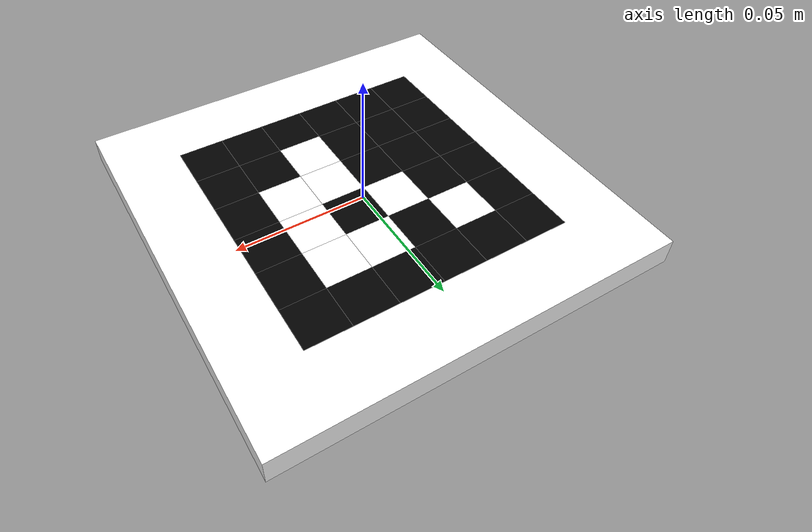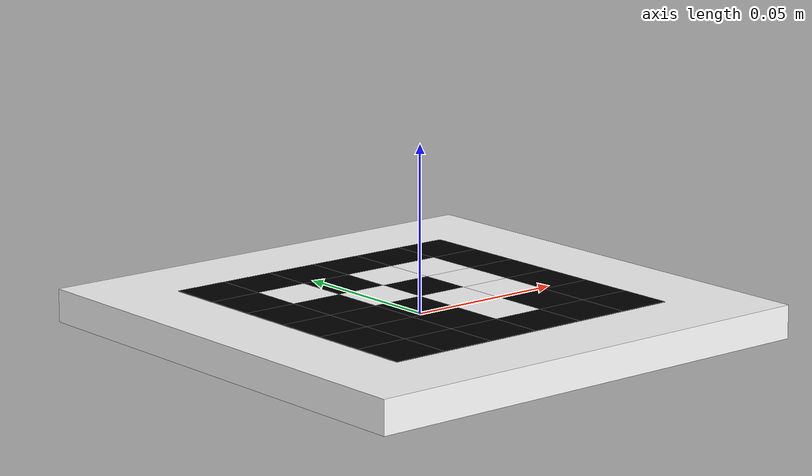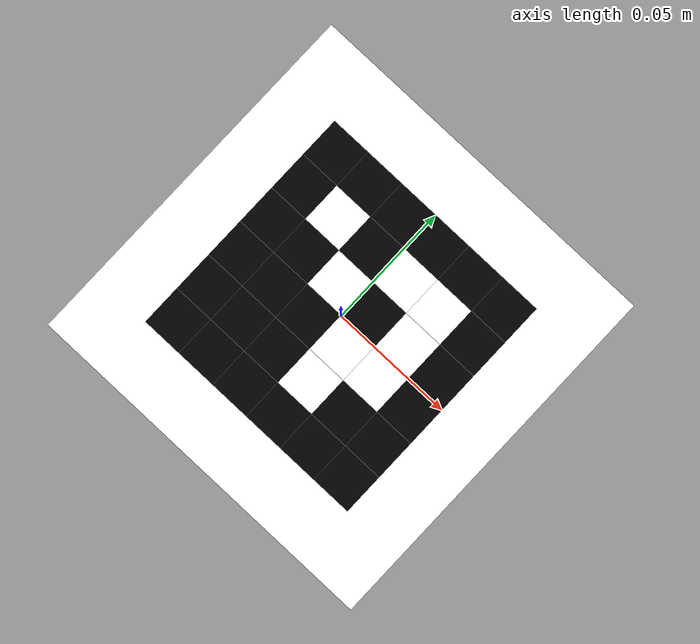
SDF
<?xml version="1.0" ?>
<sdf version="1.8">
  <model name="aruco_marker">
    <static>true</static>

    <!-- ЕДИНЫЙ ЛИНК СО ВСЕМИ ВИЗУАЛАМИ И КОЛЛИЗИЯМИ -->
    <link name="marker_body">
      <pose>0 0 0 0 0 0</pose>

      <!-- БЕЛАЯ ОСНОВА -->
      <visual name="base_visual">
        <geometry><box><size>0.15 0.15 0.01</size></box></geometry>
        <material><ambient>1 1 1 1</ambient><diffuse>1 1 1 1</diffuse></material>
      </visual>
      <collision name="base_collision">
        <geometry><box><size>0.15 0.15 0.01</size></box></geometry>
      </collision>

      <!-- СТРОКА 0: Ч Ч Ч Ч Ч Ч                       -->
      <visual name="v00"><pose>-0.04167 0.04167 0.0051 0 0 0</pose><geometry><box><size>0.01667 0.01667 0.0002</size></box></geometry><material><ambient>0 0 0 1</ambient><diffuse>0 0 0 1</diffuse></material></visual>
      <collision name="c00"><pose>-0.04167 0.04167 0.0051 0 0 0</pose><geometry><box><size>0.01667 0.01667 0.0002</size></box></geometry></collision>

      <visual name="v01"><pose>-0.02500 0.04167 0.0051 0 0 0</pose><geometry><box><size>0.01667 0.01667 0.0002</size></box></geometry><material><ambient>0 0 0 1</ambient><diffuse>0 0 0 1</diffuse></material></visual>
      <collision name="c01"><pose>-0.02500 0.04167 0.0051 0 0 0</pose><geometry><box><size>0.01667 0.01667 0.0002</size></box></geometry></collision>

      <visual name="v02"><pose>-0.00833 0.04167 0.0051 0 0 0</pose><geometry><box><size>0.01667 0.01667 0.0002</size></box></geometry><material><ambient>0 0 0 1</ambient><diffuse>0 0 0 1</diffuse></material></visual>
      <collision name="c02"><pose>-0.00833 0.04167 0.0051 0 0 0</pose><geometry><box><size>0.01667 0.01667 0.0002</size></box></geometry></collision>

      <visual name="v03"><pose>0.00833 0.04167 0.0051 0 0 0</pose><geometry><box><size>0.01667 0.01667 0.0002</size></box></geometry><material><ambient>0 0 0 1</ambient><diffuse>0 0 0 1</diffuse></material></visual>
      <collision name="c03"><pose>0.00833 0.04167 0.0051 0 0 0</pose><geometry><box><size>0.01667 0.01667 0.0002</size></box></geometry></collision>

      <visual name="v04"><pose>0.02500 0.04167 0.0051 0 0 0</pose><geometry><box><size>0.01667 0.01667 0.0002</size></box></geometry><material><ambient>0 0 0 1</ambient><diffuse>0 0 0 1</diffuse></material></visual>
      <collision name="c04"><pose>0.02500 0.04167 0.0051 0 0 0</pose><geometry><box><size>0.01667 0.01667 0.0002</size></box></geometry></collision>

      <visual name="v05"><pose>0.04167 0.04167 0.0051 0 0 0</pose><geometry><box><size>0.01667 0.01667 0.0002</size></box></geometry><material><ambient>0 0 0 1</ambient><diffuse>0 0 0 1</diffuse></material></visual>
      <collision name="c05"><pose>0.04167 0.04167 0.0051 0 0 0</pose><geometry><box><size>0.01667 0.01667 0.0002</size></box></geometry></collision>

      <!-- СТРОКА 1: Ч Б Ч Б Б Ч -->
      <visual name="v10"><pose>-0.04167 0.02500 0.0051 0 0 0</pose><geometry><box><size>0.01667 0.01667 0.0002</size></box></geometry><material><ambient>0 0 0 1</ambient><diffuse>0 0 0 1</diffuse></material></visual>
      <collision name="c10"><pose>-0.04167 0.02500 0.0051 0 0 0</pose><geometry><box><size>0.01667 0.01667 0.0002</size></box></geometry></collision>

      <visual name="v11"><pose>-0.02500 0.02500 0.0051 0 0 0</pose><geometry><box><size>0.01667 0.01667 0.0002</size></box></geometry><material><ambient>1 1 1 1</ambient><diffuse>1 1 1 1</diffuse></material></visual>
      <collision name="c11"><pose>-0.02500 0.02500 0.0051 0 0 0</pose><geometry><box><size>0.01667 0.01667 0.0002</size></box></geometry></collision>

      <visual name="v12"><pose>-0.00833 0.02500 0.0051 0 0 0</pose><geometry><box><size>0.01667 0.01667 0.0002</size></box></geometry><material><ambient>0 0 0 1</ambient><diffuse>0 0 0 1</diffuse></material></visual>
      <collision name="c12"><pose>-0.00833 0.02500 0.0051 0 0 0</pose><geometry><box><size>0.01667 0.01667 0.0002</size></box></geometry></collision>

      <visual name="v13"><pose>0.00833 0.02500 0.0051 0 0 0</pose><geometry><box><size>0.01667 0.01667 0.0002</size></box></geometry><material><ambient>1 1 1 1</ambient><diffuse>1 1 1 1</diffuse></material></visual>
      <collision name="c13"><pose>0.00833 0.02500 0.0051 0 0 0</pose><geometry><box><size>0.01667 0.01667 0.0002</size></box></geometry></collision>

      <visual name="v14"><pose>0.02500 0.02500 0.0051 0 0 0</pose><geometry><box><size>0.01667 0.01667 0.0002</size></box></geometry><material><ambient>1 1 1 1</ambient><diffuse>1 1 1 1</diffuse></material></visual>
      <collision name="c14"><pose>0.02500 0.02500 0.0051 0 0 0</pose><geometry><box><size>0.01667 0.01667 0.0002</size></box></geometry></collision>

      <visual name="v15"><pose>0.04167 0.02500 0.0051 0 0 0</pose><geometry><box><size>0.01667 0.01667 0.0002</size></box></geometry><material><ambient>0 0 0 1</ambient><diffuse>0 0 0 1</diffuse></material></visual>
      <collision name="c15"><pose>0.04167 0.02500 0.0051 0 0 0</pose><geometry><box><size>0.01667 0.01667 0.0002</size></box></geometry></collision>

      <!-- СТРОКА 2: Ч Ч Б Ч Б Ч -->
      <visual name="v20"><pose>-0.04167 0.00833 0.0051 0 0 0</pose><geometry><box><size>0.01667 0.01667 0.0002</size></box></geometry><material><ambient>0 0 0 1</ambient><diffuse>0 0 0 1</diffuse></material></visual>
      <collision name="c20"><pose>-0.04167 0.00833 0.0051 0 0 0</pose><geometry><box><size>0.01667 0.01667 0.0002</size></box></geometry></collision>

      <visual name="v21"><pose>-0.02500 0.00833 0.0051 0 0 0</pose><geometry><box><size>0.01667 0.01667 0.0002</size></box></geometry><material><ambient>0 0 0 1</ambient><diffuse>0 0 0 1</diffuse></material></visual>
      <collision name="c21"><pose>-0.02500 0.00833 0.0051 0 0 0</pose><geometry><box><size>0.01667 0.01667 0.0002</size></box></geometry></collision>

      <visual name="v22"><pose>-0.00833 0.00833 0.0051 0 0 0</pose><geometry><box><size>0.01667 0.01667 0.0002</size></box></geometry><material><ambient>1 1 1 1</ambient><diffuse>1 1 1 1</diffuse></material></visual>
      <collision name="c22"><pose>-0.00833 0.00833 0.0051 0 0 0</pose><geometry><box><size>0.01667 0.01667 0.0002</size></box></geometry></collision>

      <visual name="v23"><pose>0.00833 0.00833 0.0051 0 0 0</pose><geometry><box><size>0.01667 0.01667 0.0002</size></box></geometry><material><ambient>0 0 0 1</ambient><diffuse>0 0 0 1</diffuse></material></visual>
      <collision name="c23"><pose>0.00833 0.00833 0.0051 0 0 0</pose><geometry><box><size>0.01667 0.01667 0.0002</size></box></geometry></collision>

      <visual name="v24"><pose>0.02500 0.00833 0.0051 0 0 0</pose><geometry><box><size>0.01667 0.01667 0.0002</size></box></geometry><material><ambient>1 1 1 1</ambient><diffuse>1 1 1 1</diffuse></material></visual>
      <collision name="c24"><pose>0.02500 0.00833 0.0051 0 0 0</pose><geometry><box><size>0.01667 0.01667 0.0002</size></box></geometry></collision>

      <visual name="v25"><pose>0.04167 0.00833 0.0051 0 0 0</pose><geometry><box><size>0.01667 0.01667 0.0002</size></box></geometry><material><ambient>0 0 0 1</ambient><diffuse>0 0 0 1</diffuse></material></visual>
      <collision name="c25"><pose>0.04167 0.00833 0.0051 0 0 0</pose><geometry><box><size>0.01667 0.01667 0.0002</size></box></geometry></collision>

      <!-- СТРОКА 3: Ч Ч Ч Б Б Ч -->
      <visual name="v30"><pose>-0.04167 -0.00833 0.0051 0 0 0</pose><geometry><box><size>0.01667 0.01667 0.0002</size></box></geometry><material><ambient>0 0 0 1</ambient><diffuse>0 0 0 1</diffuse></material></visual>
      <collision name="c30"><pose>-0.04167 -0.00833 0.0051 0 0 0</pose><geometry><box><size>0.01667 0.01667 0.0002</size></box></geometry></collision>

      <visual name="v31"><pose>-0.02500 -0.00833 0.0051 0 0 0</pose><geometry><box><size>0.01667 0.01667 0.0002</size></box></geometry><material><ambient>0 0 0 1</ambient><diffuse>0 0 0 1</diffuse></material></visual>
      <collision name="c31"><pose>-0.02500 -0.00833 0.0051 0 0 0</pose><geometry><box><size>0.01667 0.01667 0.0002</size></box></geometry></collision>

      <visual name="v32"><pose>-0.00833 -0.00833 0.0051 0 0 0</pose><geometry><box><size>0.01667 0.01667 0.0002</size></box></geometry><material><ambient>0 0 0 1</ambient><diffuse>0 0 0 1</diffuse></material></visual>
      <collision name="c32"><pose>-0.00833 -0.00833 0.0051 0 0 0</pose><geometry><box><size>0.01667 0.01667 0.0002</size></box></geometry></collision>

      <visual name="v33"><pose>0.00833 -0.00833 0.0051 0 0 0</pose><geometry><box><size>0.01667 0.01667 0.0002</size></box></geometry><material><ambient>1 1 1 1</ambient><diffuse>1 1 1 1</diffuse></material></visual>
      <collision name="c33"><pose>0.00833 -0.00833 0.0051 0 0 0</pose><geometry><box><size>0.01667 0.01667 0.0002</size></box></geometry></collision>

      <visual name="v34"><pose>0.02500 -0.00833 0.0051 0 0 0</pose><geometry><box><size>0.01667 0.01667 0.0002</size></box></geometry><material><ambient>1 1 1 1</ambient><diffuse>1 1 1 1</diffuse></material></visual>
      <collision name="c34"><pose>0.02500 -0.00833 0.0051 0 0 0</pose><geometry><box><size>0.01667 0.01667 0.0002</size></box></geometry></collision>

      <visual name="v35"><pose>0.04167 -0.00833 0.0051 0 0 0</pose><geometry><box><size>0.01667 0.01667 0.0002</size></box></geometry><material><ambient>0 0 0 1</ambient><diffuse>0 0 0 1</diffuse></material></visual>
      <collision name="c35"><pose>0.04167 -0.00833 0.0051 0 0 0</pose><geometry><box><size>0.01667 0.01667 0.0002</size></box></geometry></collision>

      <!-- СТРОКА 4: Ч Ч Ч Б Ч Ч -->
      <visual name="v40"><pose>-0.04167 -0.02500 0.0051 0 0 0</pose><geometry><box><size>0.01667 0.01667 0.0002</size></box></geometry><material><ambient>0 0 0 1</ambient><diffuse>0 0 0 1</diffuse></material></visual>
      <collision name="c40"><pose>-0.04167 -0.02500 0.0051 0 0 0</pose><geometry><box><size>0.01667 0.01667 0.0002</size></box></geometry></collision>

      <visual name="v41"><pose>-0.02500 -0.02500 0.0051 0 0 0</pose><geometry><box><size>0.01667 0.01667 0.0002</size></box></geometry><material><ambient>0 0 0 1</ambient><diffuse>0 0 0 1</diffuse></material></visual>
      <collision name="c41"><pose>-0.02500 -0.02500 0.0051 0 0 0</pose><geometry><box><size>0.01667 0.01667 0.0002</size></box></geometry></collision>

      <visual name="v42"><pose>-0.00833 -0.02500 0.0051 0 0 0</pose><geometry><box><size>0.01667 0.01667 0.0002</size></box></geometry><material><ambient>0 0 0 1</ambient><diffuse>0 0 0 1</diffuse></material></visual>
      <collision name="c42"><pose>-0.00833 -0.02500 0.0051 0 0 0</pose><geometry><box><size>0.01667 0.01667 0.0002</size></box></geometry></collision>

      <visual name="v43"><pose>0.00833 -0.02500 0.0051 0 0 0</pose><geometry><box><size>0.01667 0.01667 0.0002</size></box></geometry><material><ambient>1 1 1 1</ambient><diffuse>1 1 1 1</diffuse></material></visual>
      <collision name="c43"><pose>0.00833 -0.02500 0.0051 0 0 0</pose><geometry><box><size>0.01667 0.01667 0.0002</size></box></geometry></collision>

      <visual name="v44"><pose>0.02500 -0.02500 0.0051 0 0 0</pose><geometry><box><size>0.01667 0.01667 0.0002</size></box></geometry><material><ambient>0 0 0 1</ambient><diffuse>0 0 0 1</diffuse></material></visual>
      <collision name="c44"><pose>0.02500 -0.02500 0.0051 0 0 0</pose><geometry><box><size>0.01667 0.01667 0.0002</size></box></geometry></collision>

      <visual name="v45"><pose>0.04167 -0.02500 0.0051 0 0 0</pose><geometry><box><size>0.01667 0.01667 0.0002</size></box></geometry><material><ambient>0 0 0 1</ambient><diffuse>0 0 0 1</diffuse></material></visual>
      <collision name="c45"><pose>0.04167 -0.02500 0.0051 0 0 0</pose><geometry><box><size>0.01667 0.01667 0.0002</size></box></geometry></collision>

      <!-- СТРОКА 5: Ч Ч Ч Ч Ч Ч -->
      <visual name="v50"><pose>-0.04167 -0.04167 0.0051 0 0 0</pose><geometry><box><size>0.01667 0.01667 0.0002</size></box></geometry><material><ambient>0 0 0 1</ambient><diffuse>0 0 0 1</diffuse></material></visual>
      <collision name="c50"><pose>-0.04167 -0.04167 0.0051 0 0 0</pose><geometry><box><size>0.01667 0.01667 0.0002</size></box></geometry></collision>

      <visual name="v51"><pose>-0.02500 -0.04167 0.0051 0 0 0</pose><geometry><box><size>0.01667 0.01667 0.0002</size></box></geometry><material><ambient>0 0 0 1</ambient><diffuse>0 0 0 1</diffuse></material></visual>
      <collision name="c51"><pose>-0.02500 -0.04167 0.0051 0 0 0</pose><geometry><box><size>0.01667 0.01667 0.0002</size></box></geometry></collision>

      <visual name="v52"><pose>-0.00833 -0.04167 0.0051 0 0 0</pose><geometry><box><size>0.01667 0.01667 0.0002</size></box></geometry><material><ambient>0 0 0 1</ambient><diffuse>0 0 0 1</diffuse></material></visual>
      <collision name="c52"><pose>-0.00833 -0.04167 0.0051 0 0 0</pose><geometry><box><size>0.01667 0.01667 0.0002</size></box></geometry></collision>

      <visual name="v53"><pose>0.00833 -0.04167 0.0051 0 0 0</pose><geometry><box><size>0.01667 0.01667 0.0002</size></box></geometry><material><ambient>0 0 0 1</ambient><diffuse>0 0 0 1</diffuse></material></visual>
      <collision name="c53"><pose>0.00833 -0.04167 0.0051 0 0 0</pose><geometry><box><size>0.01667 0.01667 0.0002</size></box></geometry></collision>

      <visual name="v54"><pose>0.02500 -0.04167 0.0051 0 0 0</pose><geometry><box><size>0.01667 0.01667 0.0002</size></box></geometry><material><ambient>0 0 0 1</ambient><diffuse>0 0 0 1</diffuse></material></visual>
      <collision name="c54"><pose>0.02500 -0.04167 0.0051 0 0 0</pose><geometry><box><size>0.01667 0.01667 0.0002</size></box></geometry></collision>

      <visual name="v55"><pose>0.04167 -0.04167 0.0051 0 0 0</pose><geometry><box><size>0.01667 0.01667 0.0002</size></box></geometry><material><ambient>0 0 0 1</ambient><diffuse>0 0 0 1</diffuse></material></visual>
      <collision name="c55"><pose>0.04167 -0.04167 0.0051 0 0 0</pose><geometry><box><size>0.01667 0.01667 0.0002</size></box></geometry></collision>

    </link>
  </model>
</sdf>
